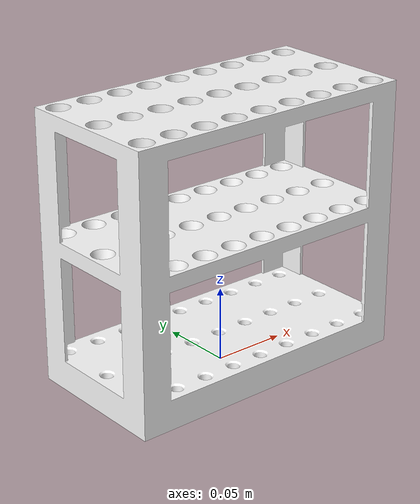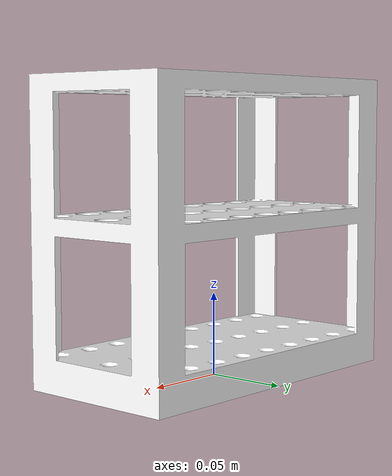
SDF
<?xml version="1.0" ?>
<sdf version="1.6">
  <model name="tube_rack">
    <static>false</static>
    <link name="link">
      <visual name="visual">
        <geometry>
          <mesh>
            <uri>model://tube_rack/meshes/tube_rack.dae</uri>
          </mesh>
        </geometry>
      </visual>
    </link>
  </model>
</sdf>
